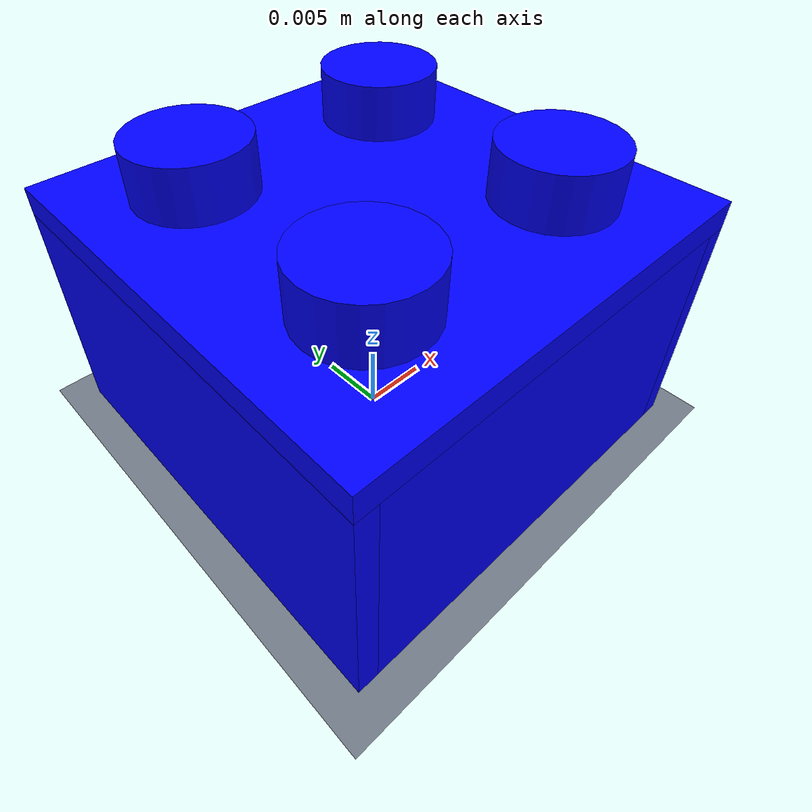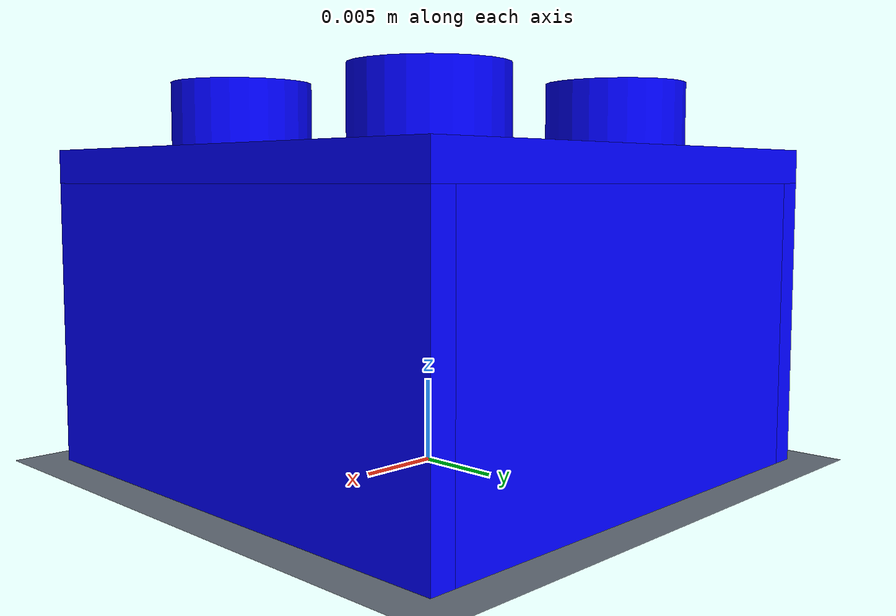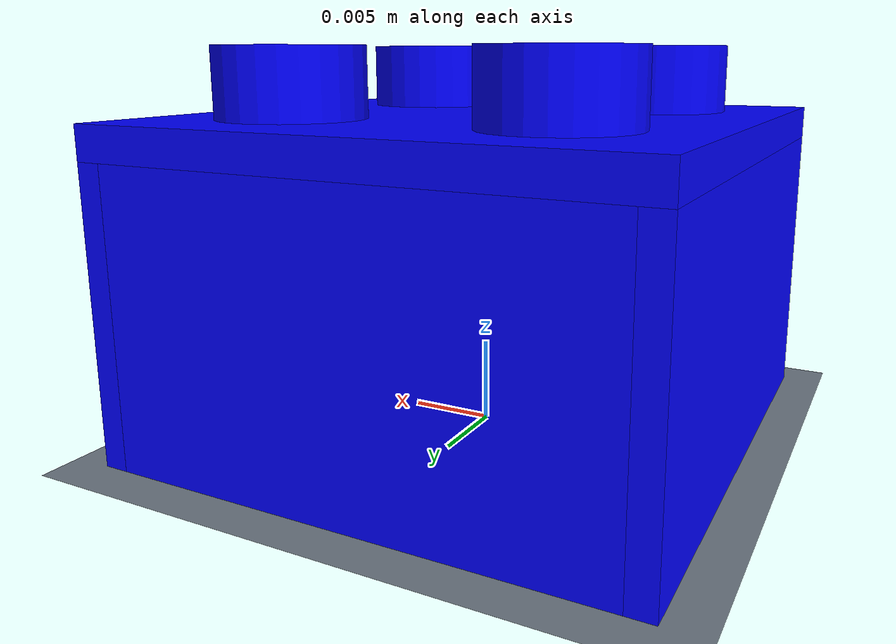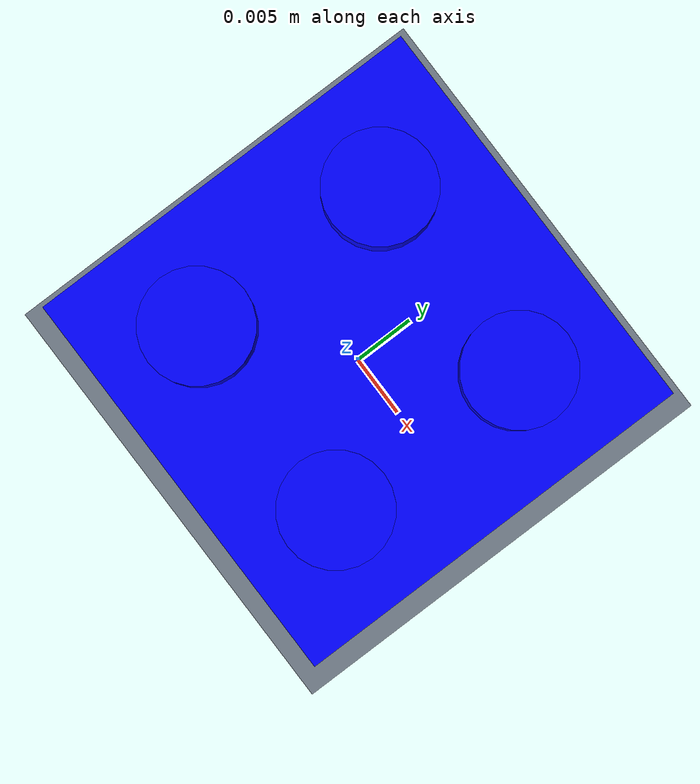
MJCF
<mujoco model="brick_2x2">
  <compiler angle="radian" autolimits="true" />
  <option timestep=".0005" integrator="implicitfast" cone="pyramidal" solver="Newton" iterations="100" />
  <worldbody>
    <geom name="floor" type="plane" size=".2 .2 .01" rgba=".44 .48 .53 1" friction="1 .005 .0001" priority="3" solref=".0011 1" solimp=".9999 .9999 .0001" />
    <body name="brick_2x2" quat="1.0000000000 0 0 0.0000000000" pos="0.000000 0.000000 0.018600">
      <freejoint />
      <geom type="mesh" pos="0 0 -0.0004000000000000002" solref=".001 1" solimp=".9999 .9999 .0001" friction="1 .005 .0001" priority="1" mesh="clutch_shell_brick_2x2_0" rgba="0 0 1 1" />
      <geom type="mesh" pos="-0.01515 0 -0.009999999999999998" solref=".001 1" solimp=".9999 .9999 .0001" friction="1 .005 .0001" priority="1" mesh="clutch_shell_brick_2x2_1" rgba="0 0 1 1" />
      <geom type="mesh" pos="0 -0.01515 -0.009999999999999998" solref=".001 1" solimp=".9999 .9999 .0001" friction="1 .005 .0001" priority="1" mesh="clutch_shell_brick_2x2_2" rgba="0 0 1 1" />
      <geom type="mesh" pos="0.01515 0 -0.009999999999999998" solref=".001 1" solimp=".9999 .9999 .0001" friction="1 .005 .0001" priority="1" mesh="clutch_shell_brick_2x2_3" rgba="0 0 1 1" />
      <geom type="mesh" pos="0 0.01515 -0.009999999999999998" solref=".001 1" solimp=".9999 .9999 .0001" friction="1 .005 .0001" priority="1" mesh="clutch_shell_brick_2x2_4" rgba="0 0 1 1" />
      <geom type="mesh" pos="0.00655 0.0 -0.009999999999999998" solref="0.03 1.0" solimp=".9 .95 .001" friction="0.3 0.001 5e-05" priority="2" euler="0 0 0.0" name="clutch_brick_2x2_tube_5" mesh="clutch_tube" condim="6" rgba="0 0 1 1" />
      <geom type="mesh" pos="0.006051410937948928 0.0025065764819913383 -0.009999999999999998" solref="0.03 1.0" solimp=".9 .95 .001" friction="0.3 0.001 5e-05" priority="2" euler="0 0 0.39269908169872414" name="clutch_brick_2x2_tube_6" mesh="clutch_tube" condim="6" rgba="0 0 1 1" />
      <geom type="mesh" pos="0.0046315494167718865 0.004631549416771886 -0.009999999999999998" solref="0.03 1.0" solimp=".9 .95 .001" friction="0.3 0.001 5e-05" priority="2" euler="0 0 0.7853981633974483" name="clutch_brick_2x2_tube_7" mesh="clutch_tube" condim="6" rgba="0 0 1 1" />
      <geom type="mesh" pos="0.0025065764819913387 0.006051410937948928 -0.009999999999999998" solref="0.03 1.0" solimp=".9 .95 .001" friction="0.3 0.001 5e-05" priority="2" euler="0 0 1.1780972450961724" name="clutch_brick_2x2_tube_8" mesh="clutch_tube" condim="6" rgba="0 0 1 1" />
      <geom type="mesh" pos="4.010718267207582e-19 0.00655 -0.009999999999999998" solref="0.03 1.0" solimp=".9 .95 .001" friction="0.3 0.001 5e-05" priority="2" euler="0 0 1.5707963267948966" name="clutch_brick_2x2_tube_9" mesh="clutch_tube" condim="6" rgba="0 0 1 1" />
      <geom type="mesh" pos="-0.002506576481991338 0.006051410937948928 -0.009999999999999998" solref="0.03 1.0" solimp=".9 .95 .001" friction="0.3 0.001 5e-05" priority="2" euler="0 0 1.9634954084936207" name="clutch_brick_2x2_tube_10" mesh="clutch_tube" condim="6" rgba="0 0 1 1" />
      <geom type="mesh" pos="-0.004631549416771886 0.0046315494167718865 -0.009999999999999998" solref="0.03 1.0" solimp=".9 .95 .001" friction="0.3 0.001 5e-05" priority="2" euler="0 0 2.356194490192345" name="clutch_brick_2x2_tube_11" mesh="clutch_tube" condim="6" rgba="0 0 1 1" />
      <geom type="mesh" pos="-0.006051410937948928 0.002506576481991339 -0.009999999999999998" solref="0.03 1.0" solimp=".9 .95 .001" friction="0.3 0.001 5e-05" priority="2" euler="0 0 2.748893571891069" name="clutch_brick_2x2_tube_12" mesh="clutch_tube" condim="6" rgba="0 0 1 1" />
      <geom type="mesh" pos="-0.00655 8.021436534415164e-19 -0.009999999999999998" solref="0.03 1.0" solimp=".9 .95 .001" friction="0.3 0.001 5e-05" priority="2" euler="0 0 3.141592653589793" name="clutch_brick_2x2_tube_13" mesh="clutch_tube" condim="6" rgba="0 0 1 1" />
      <geom type="mesh" pos="-0.006051410937948929 -0.002506576481991338 -0.009999999999999998" solref="0.03 1.0" solimp=".9 .95 .001" friction="0.3 0.001 5e-05" priority="2" euler="0 0 3.5342917352885173" name="clutch_brick_2x2_tube_14" mesh="clutch_tube" condim="6" rgba="0 0 1 1" />
      <geom type="mesh" pos="-0.004631549416771888 -0.004631549416771886 -0.009999999999999998" solref="0.03 1.0" solimp=".9 .95 .001" friction="0.3 0.001 5e-05" priority="2" euler="0 0 3.9269908169872414" name="clutch_brick_2x2_tube_15" mesh="clutch_tube" condim="6" rgba="0 0 1 1" />
      <geom type="mesh" pos="-0.0025065764819913417 -0.006051410937948927 -0.009999999999999998" solref="0.03 1.0" solimp=".9 .95 .001" friction="0.3 0.001 5e-05" priority="2" euler="0 0 4.319689898685965" name="clutch_brick_2x2_tube_16" mesh="clutch_tube" condim="6" rgba="0 0 1 1" />
      <geom type="mesh" pos="-1.2032154801622745e-18 -0.00655 -0.009999999999999998" solref="0.03 1.0" solimp=".9 .95 .001" friction="0.3 0.001 5e-05" priority="2" euler="0 0 4.71238898038469" name="clutch_brick_2x2_tube_17" mesh="clutch_tube" condim="6" rgba="0 0 1 1" />
      <geom type="mesh" pos="0.0025065764819913396 -0.006051410937948928 -0.009999999999999998" solref="0.03 1.0" solimp=".9 .95 .001" friction="0.3 0.001 5e-05" priority="2" euler="0 0 5.105088062083414" name="clutch_brick_2x2_tube_18" mesh="clutch_tube" condim="6" rgba="0 0 1 1" />
      <geom type="mesh" pos="0.004631549416771885 -0.004631549416771888 -0.009999999999999998" solref="0.03 1.0" solimp=".9 .95 .001" friction="0.3 0.001 5e-05" priority="2" euler="0 0 5.497787143782138" name="clutch_brick_2x2_tube_19" mesh="clutch_tube" condim="6" rgba="0 0 1 1" />
      <geom type="mesh" pos="0.006051410937948927 -0.002506576481991342 -0.009999999999999998" solref="0.03 1.0" solimp=".9 .95 .001" friction="0.3 0.001 5e-05" priority="2" euler="0 0 5.890486225480862" name="clutch_brick_2x2_tube_20" mesh="clutch_tube" condim="6" rgba="0 0 1 1" />
      <geom type="cylinder" size="0.0042 0.002" pos="-0.008 -0.008 0.0026" solref=".001 1" solimp=".9999 .9999 .0001" friction="1 .005 .0001" priority="1" rgba="0 0 1 1" />
      <geom type="cylinder" size="0.0042 0.002" pos="-0.008 0.008 0.0026" solref=".001 1" solimp=".9999 .9999 .0001" friction="1 .005 .0001" priority="1" rgba="0 0 1 1" />
      <geom type="cylinder" size="0.0042 0.002" pos="0.008 -0.008 0.0026" solref=".001 1" solimp=".9999 .9999 .0001" friction="1 .005 .0001" priority="1" rgba="0 0 1 1" />
      <geom type="cylinder" size="0.0042 0.002" pos="0.008 0.008 0.0026" solref=".001 1" solimp=".9999 .9999 .0001" friction="1 .005 .0001" priority="1" rgba="0 0 1 1" />
      <inertial pos="0 0 -0.009" mass="0.012" diaginertia="1.3798800000000002e-06 1.3798800000000002e-06 2.0224800000000004e-06" />
      <geom type="mesh" mesh="clutch_rib" pos="-0.008 -0.01335 -.0176" euler="0 0 3.141592653589793" condim="6" solref="0.03 1.0" solimp=".9 .95 .001" priority="2" friction="0.3 0.001 5e-05" rgba="0 0 1 1" />
      <geom type="mesh" mesh="clutch_rib" pos="0.008 -0.01335 -.0176" euler="0 0 3.141592653589793" condim="6" solref="0.03 1.0" solimp=".9 .95 .001" priority="2" friction="0.3 0.001 5e-05" rgba="0 0 1 1" />
      <geom type="mesh" mesh="clutch_rib" pos="-0.01335 -0.008 -.0176" euler="0 0 1.5707963267948966" condim="6" solref="0.03 1.0" solimp=".9 .95 .001" priority="2" friction="0.3 0.001 5e-05" rgba="0 0 1 1" />
      <geom type="mesh" mesh="clutch_rib" pos="-0.01335 0.008 -.0176" euler="0 0 1.5707963267948966" condim="6" solref="0.03 1.0" solimp=".9 .95 .001" priority="2" friction="0.3 0.001 5e-05" rgba="0 0 1 1" />
      <geom type="mesh" mesh="clutch_rib" pos="-0.008 0.01335 -.0176" euler="0 0 0" condim="6" solref="0.03 1.0" solimp=".9 .95 .001" priority="2" friction="0.3 0.001 5e-05" rgba="0 0 1 1" />
      <geom type="mesh" mesh="clutch_rib" pos="0.008 0.01335 -.0176" euler="0 0 0" condim="6" solref="0.03 1.0" solimp=".9 .95 .001" priority="2" friction="0.3 0.001 5e-05" rgba="0 0 1 1" />
      <geom type="mesh" mesh="clutch_rib" pos="0.01335 -0.008 -.0176" euler="0 0 -1.5707963267948966" condim="6" solref="0.03 1.0" solimp=".9 .95 .001" priority="2" friction="0.3 0.001 5e-05" rgba="0 0 1 1" />
      <geom type="mesh" mesh="clutch_rib" pos="0.01335 0.008 -.0176" euler="0 0 -1.5707963267948966" condim="6" solref="0.03 1.0" solimp=".9 .95 .001" priority="2" friction="0.3 0.001 5e-05" rgba="0 0 1 1" />
    </body>
  </worldbody>
  <asset>
    <mesh name="clutch_tube" vertex="-0.00105 -0.00130287600633676 -0.0086 -0.00105 0.00130287600633676 -0.0086 0.00014999999999999996 -0.00130287600633676 -0.0086 0.00014999999999999996 0.00130287600633676 -0.0086 -0.0006 -0.00130287600633676 -0.0066 -0.0006 0.00130287600633676 -0.0066 0.0006 -0.00130287600633676 -0.0066 0.0006 0.00130287600633676 -0.0066 -0.0006 -0.00130287600633676 0.0086 -0.0006 0.00130287600633676 0.0086 0.0006 -0.00130287600633676 0.0086 0.0006 0.00130287600633676 0.0086" />
    <mesh name="clutch_rib" vertex="-0.001 0.0011 -0.001 -0.001 0.0012 -0.001 0.001 0.0011 -0.001 0.001 0.0012 -0.001 -0.001 -0.0012 0.001 -0.001 0.0012 0.001 0.001 -0.0012 0.001 0.001 0.0012 0.001 -0.001 -0.0012 0.0162 -0.001 0.0012 0.0162 0.001 -0.0012 0.0162 0.001 0.0012 0.0162" />
    <mesh name="clutch_shell_brick_2x2_0" vertex="-0.0159 -0.0159 -0.001 -0.0159 -0.0159 0.001 -0.0159 0.0159 -0.001 -0.0159 0.0159 0.001 0.0159 -0.0159 -0.001 0.0159 -0.0159 0.001 0.0159 0.0159 -0.001 0.0159 0.0159 0.001" />
    <mesh name="clutch_shell_brick_2x2_1" vertex="-0.00075 -0.0159 -0.0086 -0.00075 -0.0159 0.0086 -0.00075 0.0159 -0.0086 -0.00075 0.0159 0.0086 0.00075 -0.0159 -0.0086 0.00075 -0.0159 0.0086 0.00075 0.0159 -0.0086 0.00075 0.0159 0.0086" />
    <mesh name="clutch_shell_brick_2x2_2" vertex="-0.014400000000000001 -0.00075 -0.0086 -0.014400000000000001 -0.00075 0.0086 -0.014400000000000001 0.00075 -0.0086 -0.014400000000000001 0.00075 0.0086 0.014400000000000001 -0.00075 -0.0086 0.014400000000000001 -0.00075 0.0086 0.014400000000000001 0.00075 -0.0086 0.014400000000000001 0.00075 0.0086" />
    <mesh name="clutch_shell_brick_2x2_3" vertex="-0.00075 -0.0159 -0.0086 -0.00075 -0.0159 0.0086 -0.00075 0.0159 -0.0086 -0.00075 0.0159 0.0086 0.00075 -0.0159 -0.0086 0.00075 -0.0159 0.0086 0.00075 0.0159 -0.0086 0.00075 0.0159 0.0086" />
    <mesh name="clutch_shell_brick_2x2_4" vertex="-0.014400000000000001 -0.00075 -0.0086 -0.014400000000000001 -0.00075 0.0086 -0.014400000000000001 0.00075 -0.0086 -0.014400000000000001 0.00075 0.0086 0.014400000000000001 -0.00075 -0.0086 0.014400000000000001 -0.00075 0.0086 0.014400000000000001 0.00075 -0.0086 0.014400000000000001 0.00075 0.0086" />
  </asset>
</mujoco>
